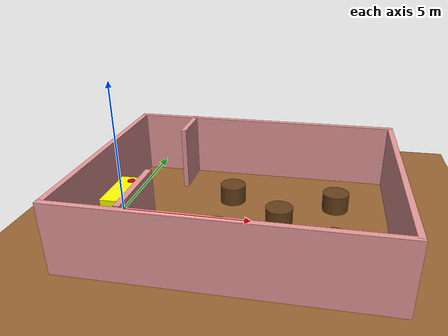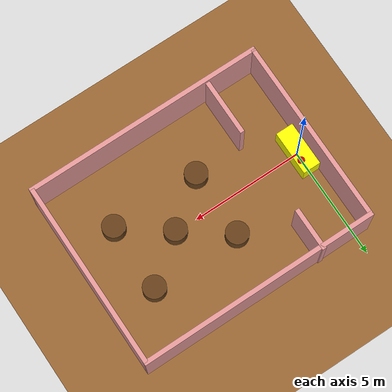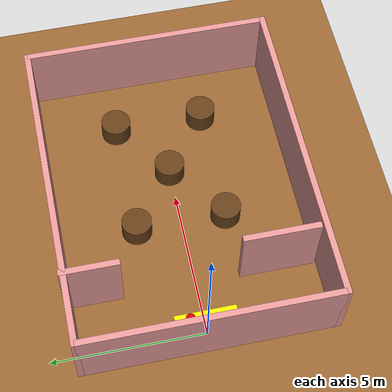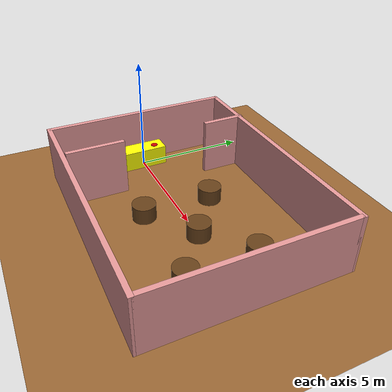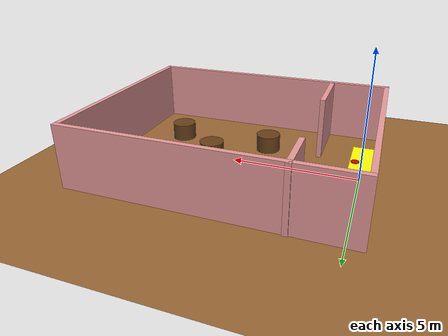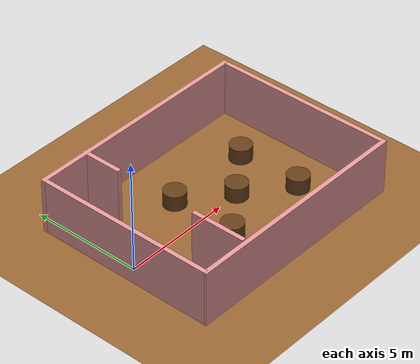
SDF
<?xml version="1.0" ?>
<sdf version="1.6">
  <world name="pizzeria_world">

    <gui fullscreen='0'>
      <camera name='user_camera'>
        <pose>0 2 3 0 0.7 3</pose>
        <view_controller>orbit</view_controller>
        <projection_type>perspective</projection_type>
      </camera>
    </gui>

    <physics name='default_physics' default='0' type='ode'>
      <gravity>0 0 -9.8066</gravity>
      <ode>
        <solver>
          <type>quick</type>
          <iters>10</iters>
          <sor>1.3</sor>
          <use_dynamic_moi_rescaling>0</use_dynamic_moi_rescaling>
        </solver>
        <constraints>
          <cfm>0</cfm>
          <erp>0.2</erp>
          <contact_max_correcting_vel>100</contact_max_correcting_vel>
          <contact_surface_layer>0.001</contact_surface_layer>
        </constraints>
      </ode>
      <max_step_size>0.0085</max_step_size>
      <real_time_factor>1</real_time_factor>
      <real_time_update_rate>250</real_time_update_rate>
      <magnetic_field>6.0e-6 2.3e-5 -4.2e-5</magnetic_field>
    </physics>

    <light type="directional" name="sun">
      <cast_shadows>false</cast_shadows>
      <pose>0 0 10 0 0 0</pose>
      <diffuse>0.8 0.8 0.8 1</diffuse>
      <specular>0.2 0.2 0.2 1</specular>
      <attenuation>
        <range>1000</range>
        <constant>0.9</constant>
        <linear>0.01</linear>
        <quadratic>0.001</quadratic>
      </attenuation>
      <direction>-0.5 0.1 -0.9</direction>
    </light>

    <model name="ground_plane">
      <static>true</static>
      <link name="link">
        <collision name="collision">
          <geometry>
            <plane>
              <normal>0 0 1</normal>
              <size>100 100</size>
            </plane>
          </geometry>
        </collision>
        <visual name="visual">
          <geometry>
            <plane>
              <normal>0 0 1</normal>
              <size>100 100</size>
            </plane>
          </geometry>
          <material>
            <ambient>0.6 0.4 0.2 1</ambient>
            <diffuse>0.6 0.4 0.2 1</diffuse>
          </material>
        </visual>
      </link>
    </model>

    <model name="pizzeria_structure">
      <static>true</static>
      <link name="walls">

        <visual name="wall_west_visual">
          <pose>-0.5 0 1.25 0 0 0</pose>
          <geometry>
            <box>
              <size>0.2 8.2 2.5</size>
            </box>
          </geometry>
          <material><ambient>0.9 0.6 0.6 1</ambient><diffuse>0.9 0.6 0.6 1</diffuse></material>
        </visual>
        <collision name="wall_west_collision">
          <pose>-0.5 0 1.25 0 0 0</pose>
          <geometry>
            <box>
              <size>0.2 8.2 2.5</size>
            </box>
          </geometry>
        </collision>

        <visual name="wall_east_visual">
          <pose>10 0 1.25 0 0 0</pose>
          <geometry>
            <box>
              <size>0.2 8.2 2.5</size>
            </box>
          </geometry>
          <material><ambient>0.9 0.6 0.6 1</ambient><diffuse>0.9 0.6 0.6 1</diffuse></material>
        </visual>
        <collision name="wall_east_collision">
          <pose>10 0 1.25 0 0 0</pose>
          <geometry>
            <box>
              <size>0.2 8.2 2.5</size>
            </box>
          </geometry>
        </collision>

        <visual name="wall_north_visual">
          <pose>4.75 4.1 1.25 0 0 0</pose>
          <geometry>
            <box>
              <size>10.7 0.2 2.5</size>
            </box>
          </geometry>
          <material><ambient>0.9 0.6 0.6 1</ambient><diffuse>0.9 0.6 0.6 1</diffuse></material>
        </visual>
        <collision name="wall_north_collision">
          <pose>4.75 4.1 1.25 0 0 0</pose>
          <geometry>
            <box>
              <size>10.7 0.2 2.5</size>
            </box>
          </geometry>
        </collision>

        <visual name="wall_south_visual">
          <pose>4.75 -4.1 1.25 0 0 0</pose>
          <geometry>
            <box>
              <size>10.7 0.2 2.5</size>
            </box>
          </geometry>
          <material><ambient>0.9 0.6 0.6 1</ambient><diffuse>0.9 0.6 0.6 1</diffuse></material>
        </visual>
        <collision name="wall_south_collision">
          <pose>4.75 -4.1 1.25 0 0 0</pose>
          <geometry>
            <box>
              <size>10.7 0.2 2.5</size>
            </box>
          </geometry>
        </collision>

        <visual name="wall_sep_1_visual">
          <pose>1.8 3.3 1.25 0 0 0</pose> <geometry>
            <box>
              <size>0.2 1.9 2.5</size>
            </box>
          </geometry>
          <material><ambient>0.9 0.6 0.6 1</ambient><diffuse>0.9 0.6 0.6 1</diffuse></material>
        </visual>
        <collision name="wall_sep_1_collision">
          <pose>1.8 3.3 1.25 0 0 0</pose>
          <geometry>
            <box>
              <size>0.2 1.9 2.5</size>
            </box>
          </geometry>
        </collision>

        <visual name="wall_sep_2_visual">
          <pose>1.8 -2.7 1.25 0 0 0</pose>
          <geometry>
            <box>
              <size>0.2 2.5 2.5</size>
            </box>
          </geometry>
          <material><ambient>0.9 0.6 0.6 1</ambient><diffuse>0.9 0.6 0.6 1</diffuse></material>
        </visual>
        <collision name="wall_sep_2_collision">
          <pose>1.8 -2.7 1.25 0 0 0</pose>
          <geometry>
            <box>
              <size>0.2 2.5 2.5</size>
            </box>
          </geometry>
        </collision>
      </link>
    </model>

    <model name="kitchen_counter">
      <static>true</static>
      <pose>0 0 0.45 0 0 0</pose>
      <link name="link">
        <collision name="collision">
          <geometry>
            <box>
              <size>0.8 2.0 0.9</size>
            </box>
          </geometry>
        </collision>
        <visual name="visual">
          <geometry>
            <box>
              <size>0.8 2.0 0.9</size>
            </box>
          </geometry>
          <material>
            <ambient>1 1 0 1</ambient>
            <diffuse>1 1 0 1</diffuse>
          </material>
        </visual>
      </link>
    </model>

    <include>
    <uri>model://pizza</uri>
    <name>my_pizza</name>
    <pose>0.2 0.5 1 0 0 0</pose>
    </include>

    <model name="table_1">
      <static>true</static>
      <pose>4.0 1.5 0.35 0 0 0</pose>
      <link name="link">
        <collision name="collision">
          <geometry>
            <cylinder>
              <radius>0.5</radius>
              <length>0.7</length>
            </cylinder>
          </geometry>
        </collision>
        <visual name="visual">
          <geometry>
            <cylinder>
              <radius>0.5</radius>
              <length>0.7</length>
            </cylinder>
          </geometry>
          <material>
            <ambient>0.4 0.25 0.1 1</ambient>
            <diffuse>0.4 0.25 0.1 1</diffuse>
          </material>
        </visual>
      </link>
    </model>

    <model name="table_2">
      <static>true</static>
      <pose>4.0 -1.5 0.35 0 0 0</pose>
      <link name="link">
        <collision name="collision">
          <geometry>
            <cylinder>
              <radius>0.5</radius>
              <length>0.7</length>
            </cylinder>
          </geometry>
        </collision>
        <visual name="visual">
          <geometry>
            <cylinder>
              <radius>0.5</radius>
              <length>0.7</length>
            </cylinder>
          </geometry>
          <material>
             <ambient>0.4 0.25 0.1 1</ambient>
             <diffuse>0.4 0.25 0.1 1</diffuse>
          </material>
        </visual>
      </link>
    </model>

    <model name="table_3">
      <static>true</static>
      <pose>6 0 0.35 0 0 0</pose>
      <link name="link">
        <collision name="collision">
          <geometry>
            <cylinder>
              <radius>0.5</radius>
              <length>0.7</length>
            </cylinder>
          </geometry>
        </collision>
        <visual name="visual">
          <geometry>
            <cylinder>
              <radius>0.5</radius>
              <length>0.7</length>
            </cylinder>
          </geometry>
          <material>
            <ambient>0.4 0.25 0.1 1</ambient>
            <diffuse>0.4 0.25 0.1 1</diffuse>
          </material>
        </visual>
      </link>
    </model>

    <model name="table_4">
      <static>true</static>
      <pose>8 -1.5 0.35 0 0 0</pose>
      <link name="link">
        <collision name="collision">
          <geometry>
            <cylinder>
              <radius>0.5</radius>
              <length>0.7</length>
            </cylinder>
          </geometry>
        </collision>
        <visual name="visual">
          <geometry>
            <cylinder>
              <radius>0.5</radius>
              <length>0.7</length>
            </cylinder>
          </geometry>
          <material>
             <ambient>0.4 0.25 0.1 1</ambient>
             <diffuse>0.4 0.25 0.1 1</diffuse>
          </material>
        </visual>
      </link>
    </model>

    <model name="table_5">
      <static>true</static>
      <pose>8 1.5 0.35 0 0 0</pose>
      <link name="link">
        <collision name="collision">
          <geometry>
            <cylinder>
              <radius>0.5</radius>
              <length>0.7</length>
            </cylinder>
          </geometry>
        </collision>
        <visual name="visual">
          <geometry>
            <cylinder>
              <radius>0.5</radius>
              <length>0.7</length>
            </cylinder>
          </geometry>
          <material>
            <ambient>0.4 0.25 0.1 1</ambient>
            <diffuse>0.4 0.25 0.1 1</diffuse>
          </material>
        </visual>
      </link>
    </model>

    <plugin
      filename="libignition-gazebo-physics-system.so"
      name="ignition::gazebo::systems::Physics">
    </plugin>
    <plugin
      filename="libignition-gazebo-user-commands-system.so"
      name="ignition::gazebo::systems::UserCommands">
    </plugin>
    <plugin
      filename="libignition-gazebo-scene-broadcaster-system.so"
      name="ignition::gazebo::systems::SceneBroadcaster">
    </plugin>

    <plugin
      filename="libignition-gazebo-sensors-system.so"
      name="ignition::gazebo::systems::Sensors">
      <render_engine>ogre2</render_engine>
    </plugin>

  </world>
</sdf>

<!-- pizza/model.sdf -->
<sdf version="1.6">
  <model name="pizza">
    <static>false</static>
    <link name="link">

      <inertial>
        <mass>0.5</mass>
        <inertia>
          <ixx>0.003</ixx>
          <ixy>0</ixy>
          <ixz>0</ixz>
          <iyy>0.003</iyy>
          <iyz>0</iyz>
          <izz>0.006</izz>
        </inertia>
      </inertial>

      <collision name="collision">
        <geometry>
          <cylinder>
            <radius>0.15</radius>
            <length>0.02</length>
          </cylinder>
        </geometry>
        <surface>
          <friction>
            <ode>
              <mu>100000.0</mu>
              <mu2>50.0</mu2>
            </ode>
          </friction>
          <contact>
            <ode>
              <kp>1000000.0</kp>
              <kd>1.0</kd>
            </ode>
          </contact>
        </surface>
      </collision>

      <visual name="visual">
        <geometry>
          <cylinder>
            <radius>0.15</radius>
            <length>0.02</length>
          </cylinder>
        </geometry>

        <material>
          <ambient>0.8 0.0 0.0 1</ambient>
          <diffuse>0.8 0.0 0.0 1</diffuse>
          <specular>0.1 0.1 0.1 1</specular>
          <emissive>0.3 0.0 0.0 1</emissive>
        </material>

      </visual>

    </link>
  </model>
</sdf>
